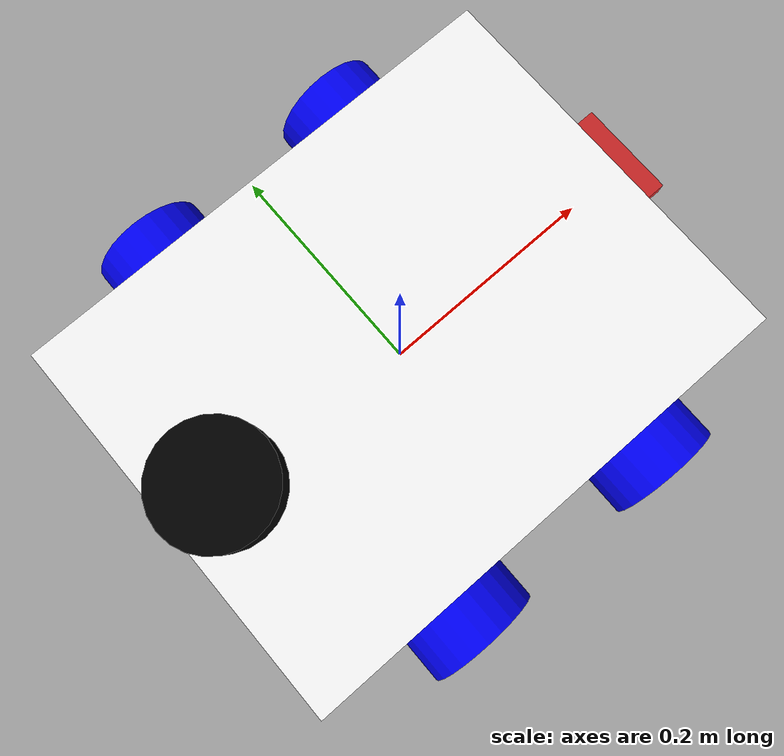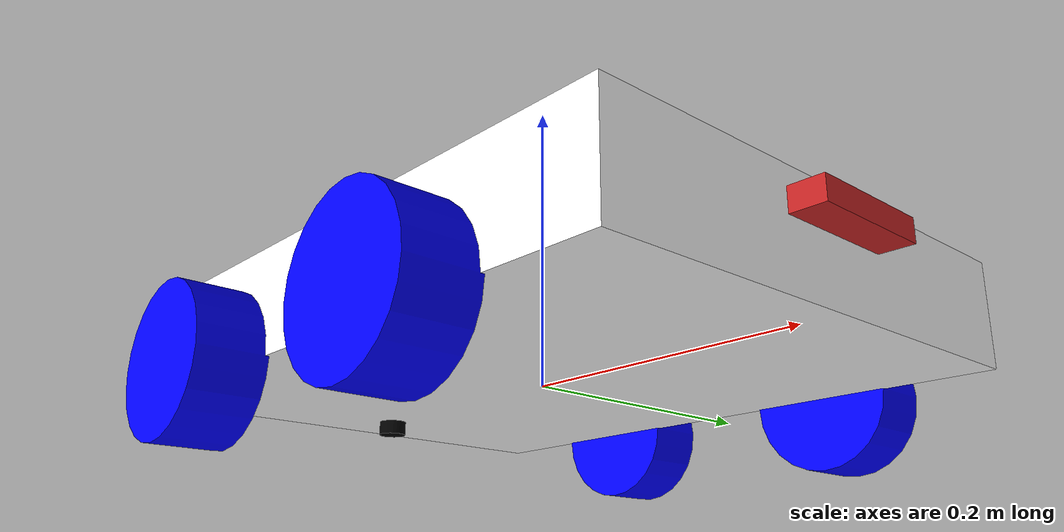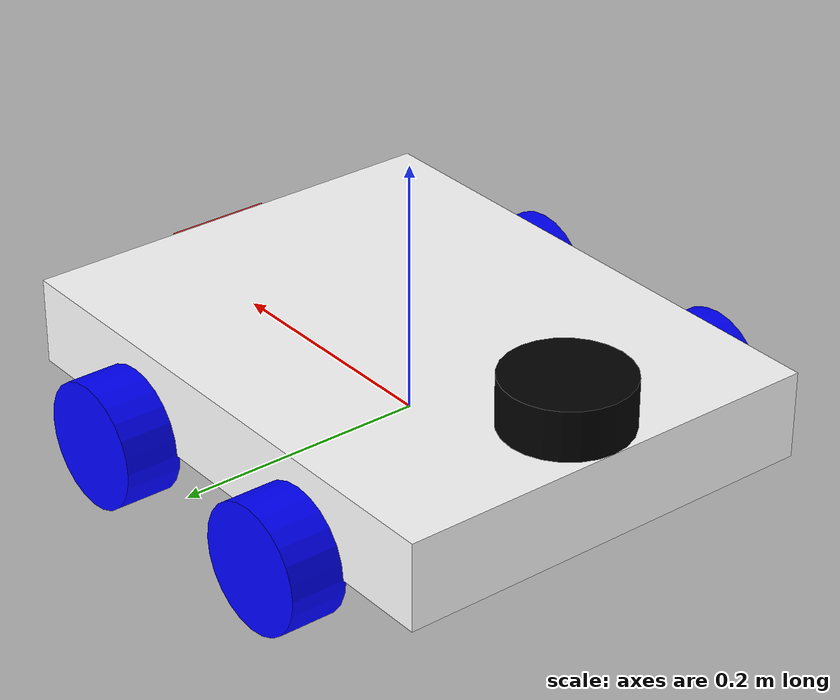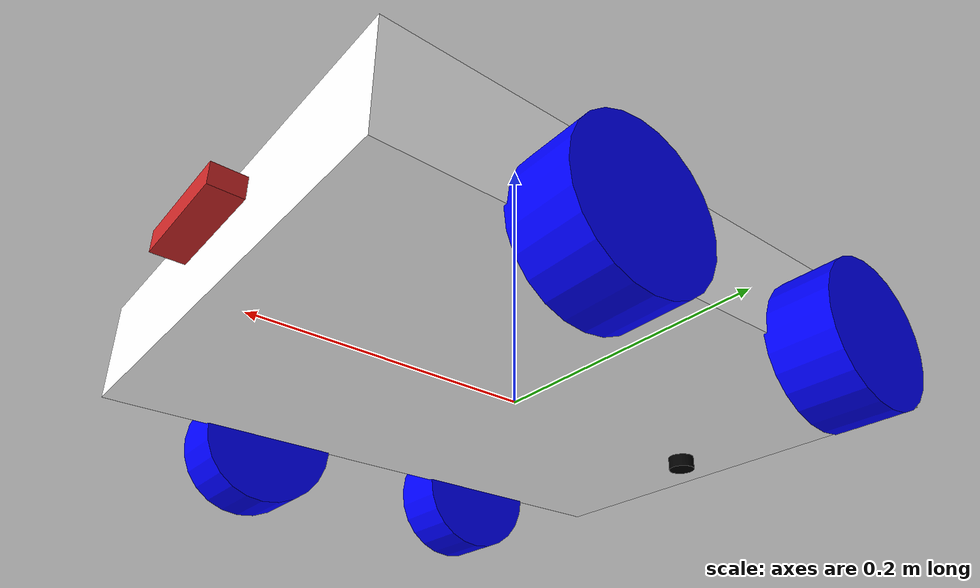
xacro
<?xml version="1.0"?>
<robot xmlns:xacro="http://www.ros.org/wiki/xacro"  name="robot">

    <xacro:include filename="robot_core.xacro"/>
    <!--xacro:include filename="gazebo_control.xacro"/-->
    <xacro:include filename="lidar.xacro"/>
    <xacro:include filename="depth_camera.xacro"/>
    <xacro:include filename="ros2_control.xacro"/>
</robot>

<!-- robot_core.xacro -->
<robot xmlns:xacro="http://www.ros.org/wiki/xacro" >
    <xacro:include filename="$(find robot_model)/description/inertial_macros.xacro"/>

    <material name="white">
        <color rgba="1 1 1 1"/>
    </material>

    <material name="orange">
        <color rgba="1 0.5 0 1"/>
    </material>

    <material name="blue">
        <color rgba="0 0 1 1"/>
    </material>

    <material name="black">
        <color rgba="0 0 0 1"/>
    </material>

    <!-- ================= BASE LINK ================= -->

    <link name="base_link">

    </link>

    <!-- ================= CHASSIS LINK ================= -->

    <joint name="chassis_joint" type="fixed">
        <parent link="base_link"/>
        <child link="chassis"/>
        <origin xyz="-0.225 0 0" rpy="0 0 0"/>
    </joint>

    <link name="chassis">
        <visual>
            <origin xyz="0.225 0 0.035" rpy="0 0 0"/>
            <geometry>
                <box size="0.45 0.35 0.07"/>
            </geometry>
            <material name="white"/>
        </visual>
        <collision>
            <origin xyz="0.225 0 0.035" rpy="0 0 0"/>
            <geometry>
                <box size="0.45 0.35 0.07"/>
            </geometry>
        </collision>

        <xacro:inertial_box mass="1.0" x="0.45" y="0.35" z="0.07">
            <origin xyz="0.225 0 0.035" rpy="0 0 0"/>
        </xacro:inertial_box>

    </link>
    <gazebo reference="chassis">
        <material>Gazebo/White</material>
    </gazebo>
    <!-- ================= LEFT FRONT WHEEL LINK ================= -->

    <joint name="left_front_wheel_joint" type="continuous">
        <parent link="base_link"/>
        <child link="left_front_wheel"/>
        <origin xyz="-0.1 0.195 0" rpy="-${pi/2} 0 0"/>
        <axis xyz="0 0 1"/>
    </joint>

    <link name="left_front_wheel">
        <visual>
            <!--origin xyz="-0.1 0.195 0" rpy="-${pi/2} 0 0"/-->
            <geometry>
                <cylinder radius="0.05" length="0.045"/>
            </geometry>
            <material name="blue"/>
        </visual>
        <collision>
            <!--origin xyz="-0.1 0.195 0" rpy="-${pi/2} 0 0"/-->
            <geometry>
                <cylinder radius="0.05" length="0.045"/>
            </geometry>
        </collision>
        <xacro:inertial_cylinder mass="0.2" radius="0.05" length="0.045">
            <origin xyz="0 0 0" rpy="0 0 0"/>
        </xacro:inertial_cylinder>
    </link>
    <gazebo reference="left_front_wheel">
        <material>Gazebo/Blue</material>
    </gazebo>
    <!-- ================= LEFT REAR WHEEL LINK ================= -->

    <joint name="left_rear_wheel_joint" type="continuous">
        <parent link="base_link"/>
        <child link="left_rear_wheel"/>
        <origin xyz="0.1 0.195 0" rpy="-${pi/2} 0 0"/>
        <axis xyz="0 0 1"/>
        <mimic joint="left_front_wheel_joint"/>
    </joint>

    <link name="left_rear_wheel">
        <visual>
            <!--origin xyz="0.1 0.195 0" rpy="-${pi/2} 0 0"/-->
            <geometry>
                <cylinder radius="0.05" length="0.045"/>
            </geometry>
            <material name="blue"/>
        </visual>
        <collision>
            <!--origin xyz="0.1 0.195 0" rpy="-${pi/2} 0 0"/-->
            <geometry>
                <cylinder radius="0.05" length="0.045"/>
            </geometry>
        </collision>
        <xacro:inertial_cylinder mass="0.2" radius="0.05" length="0.045">
            <origin xyz="0 0 0" rpy="0 0 0"/>
        </xacro:inertial_cylinder>
    </link>
    <gazebo reference="left_rear_wheel">
        <material>Gazebo/Blue</material>
        <mu1 value="0.001" />
        <mu2 value="0.001"/>
    </gazebo>
        <!-- ================= RIGHT FRONT WHEEL LINK ================= -->

    <joint name="right_front_wheel_joint" type="continuous">
        <parent link="base_link"/>
        <child link="right_front_wheel"/>
        <origin xyz="-0.1 -0.195 0" rpy="-${pi/2} 0 0"/>
        <axis xyz="0 0 1"/>
    </joint>

    <link name="right_front_wheel">
        <visual>
            <!--origin xyz="-0.1 -0.195 0" rpy="${pi/2} 0 0"/-->
            <geometry>
                <cylinder radius="0.05" length="0.045"/>
            </geometry>
            <material name="blue"/>
        </visual>
        <collision>
            <!--origin xyz="-0.1 -0.195 0" rpy="${pi/2} 0 0"/-->
            <geometry>
                <cylinder radius="0.05" length="0.045"/>
            </geometry>
        </collision>
        <xacro:inertial_cylinder mass="0.2" radius="0.05" length="0.045">
            <origin xyz="0 0 0" rpy="0 0 0"/>
        </xacro:inertial_cylinder>

    </link>
    <gazebo reference="right_front_wheel">
        <material>Gazebo/Blue</material>
    </gazebo>
    <!-- ================= RIGHT REAR WHEEL LINK ================= -->

    <joint name="right_rear_wheel_joint" type="continuous">
        <parent link="base_link"/>
        <child link="right_rear_wheel"/>
        <origin xyz="0.1 -0.195 0" rpy="-${pi/2} 0 0"/>
        <axis xyz="0 0 1"/>
        <mimic joint="right_front_wheel_joint"/>
    </joint>

    <link name="right_rear_wheel">
        <visual>
            <!--origin xyz="0.1 -0.195 0" rpy="${pi/2} 0 0"/-->
            <geometry>
                <cylinder radius="0.05" length="0.045"/>
            </geometry>
            <material name="blue"/>
        </visual>
        <collision>
            <!--origin xyz="0.1 -0.195 0" rpy="${pi/2} 0 0"/-->
            <geometry>
                <cylinder radius="0.05" length="0.045"/>
            </geometry>
        </collision>
        <xacro:inertial_cylinder mass="0.2" radius="0.05" length="0.045">
            <origin xyz="0 0 0" rpy="0 0 0"/>
        </xacro:inertial_cylinder>
    </link>
    <gazebo reference="right_rear_wheel">
        <material>Gazebo/Blue</material>
        <mu1 value="0.001" />
        <mu2 value="0.001"/>
    </gazebo>
</robot>

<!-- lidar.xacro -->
<robot xmlns:xacro="http://www.ros.org/wiki/xacro" >

    <joint name="laser_joint" type="fixed">
        <parent link="chassis"/>
        <child link="laser_frame"/>
        <origin xyz="0.05 0 0.09" rpy="0 0 0"/>
    </joint>

    <link name="laser_frame">
        <visual>
            <geometry>
                <cylinder radius="0.05" length="0.04"/>
            </geometry>
            <material name="black"/>
        </visual>
        <visual>
            <origin xyz="0 0 -0.05"/>
            <geometry>
                <cylinder radius="0.01" length="0.1"/>
            </geometry>
            <material name="black"/>
        </visual>
        <collision>
            <geometry>
                <cylinder radius="0.05" length="0.04"/>
            </geometry>
        </collision>
        <xacro:inertial_cylinder mass="0.1" length="0.04" radius="0.05">
            <origin xyz="0 0 0" rpy="0 0 0"/>
        </xacro:inertial_cylinder>
    </link>

    <gazebo reference="laser_frame">
        <material>Gazebo/Black</material>

        <sensor name="laser" type="ray">
            <pose> 0 0 0 0 0 0 </pose>
            <visualize>false</visualize>
            <update_rate>10</update_rate>
            <ray>
                <scan>
                    <horizontal>
                        <samples>360</samples>
                        <min_angle>-3.14</min_angle>
                        <max_angle>3.14</max_angle>
                    </horizontal>
                </scan>
                <range>
                    <min>0.3</min>
                    <max>12</max>
                </range>
            </ray>
            <plugin name="laser_controller" filename="libgazebo_ros_ray_sensor.so">
                <ros>
                    <argument>~/out:=scan</argument>
                </ros>
                <output_type>sensor_msgs/LaserScan</output_type>
                <frame_name>laser_frame</frame_name>
            </plugin>
        </sensor>
    </gazebo>

</robot>

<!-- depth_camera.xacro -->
<robot xmlns:xacro="http://www.ros.org/wiki/xacro" >

    <joint name="camera_joint" type="fixed">
        <parent link="chassis"/>
        <child link="camera_link"/>
        <origin xyz="0.46 0 0.05" rpy="0 0 0"/>
    </joint>

    <link name="camera_link">
        <visual>
            <geometry>
                <box size="0.024 0.085 0.015"/>
            </geometry>
            <material name="red"/>
        </visual>
    <collision>
      <geometry>
        <box size="0.024 0.085 0.015"/>
      </geometry>
    </collision>

    </link>

    <joint name="camera_optical_joint" type="fixed">
        <parent link="camera_link"/>
        <child link="camera_link_optical"/>
        <origin xyz="0 0 0" rpy="${-pi/2} 0 ${-pi/2}"/>
    </joint>

    <link name="camera_link_optical"></link>

    <gazebo reference="camera_link">
        <material>Gazebo/Red</material>

        <sensor name="camera" type="depth">
            <pose> 0 0 0 0 0 0 </pose>
            <visualize>true</visualize>
            <update_rate>15</update_rate>
            <camera>
                <horizontal_fov>1.45</horizontal_fov>
                <image>
                    <format>B8G8R8</format>
                    <width>1280</width>
                    <height>720</height>
                </image>
                <clip>
                    <near>0.1</near>
                    <far>12.0</far>
                </clip>
            </camera>
            <plugin name="camera_controller" filename="libgazebo_ros_camera.so">
                <frame_name>camera_link_optical</frame_name>
                <min_depth>0.1</min_depth>
                <max_depth>100.0</max_depth>
            </plugin>
        </sensor>
    </gazebo>

</robot>
